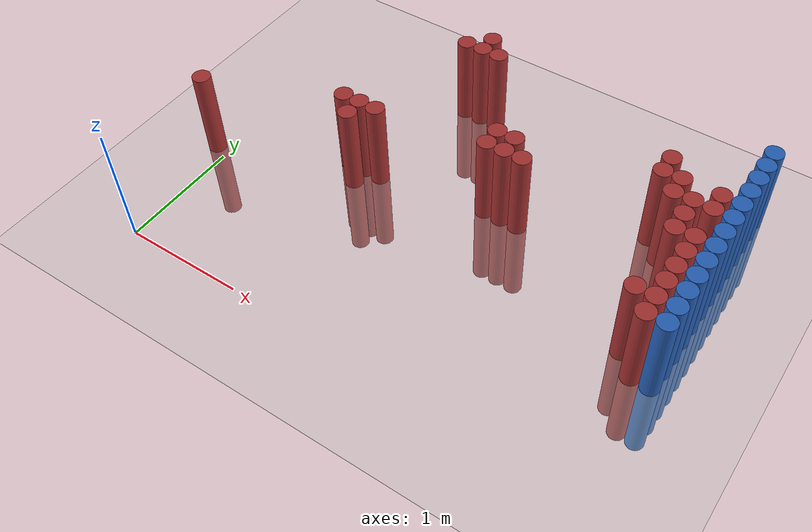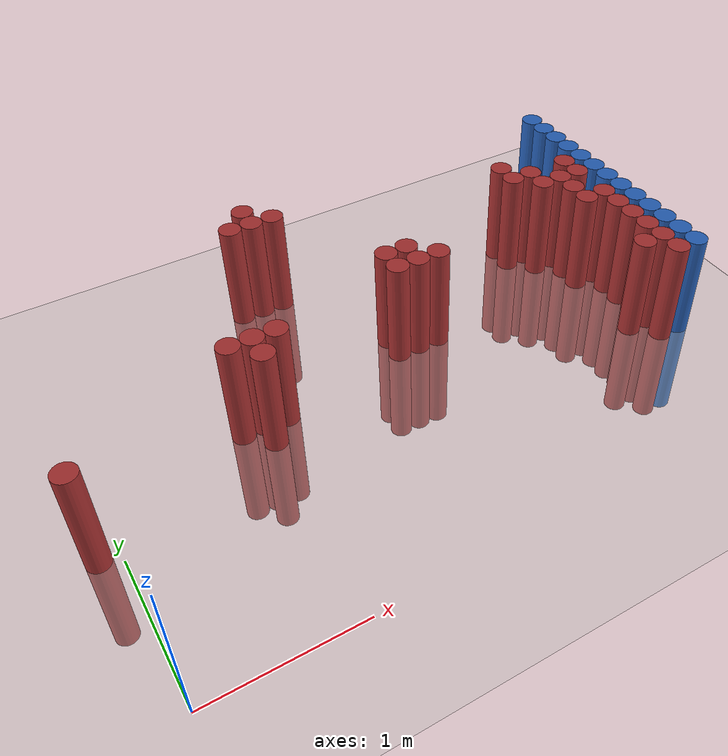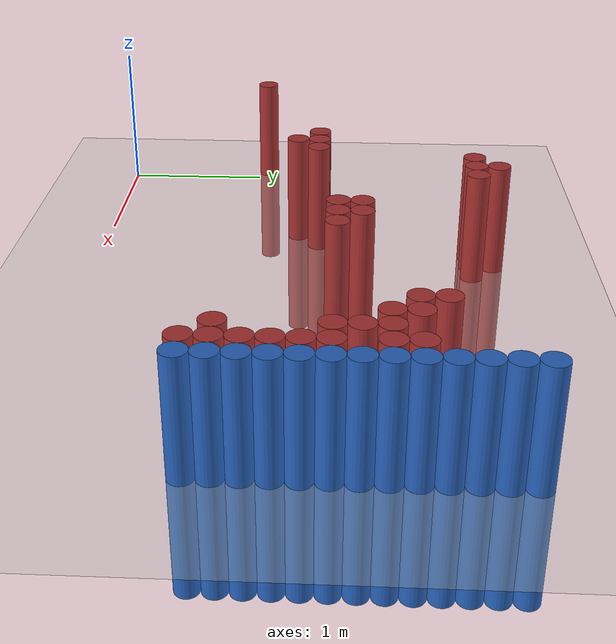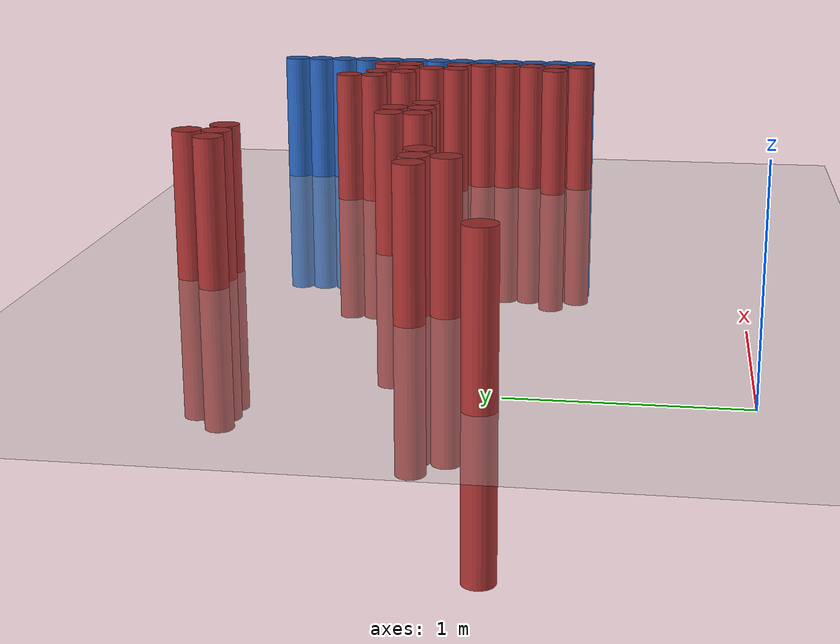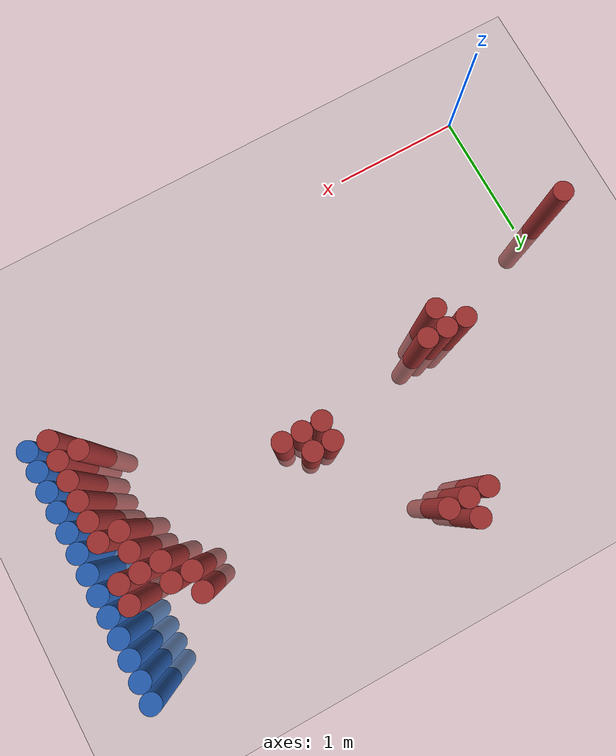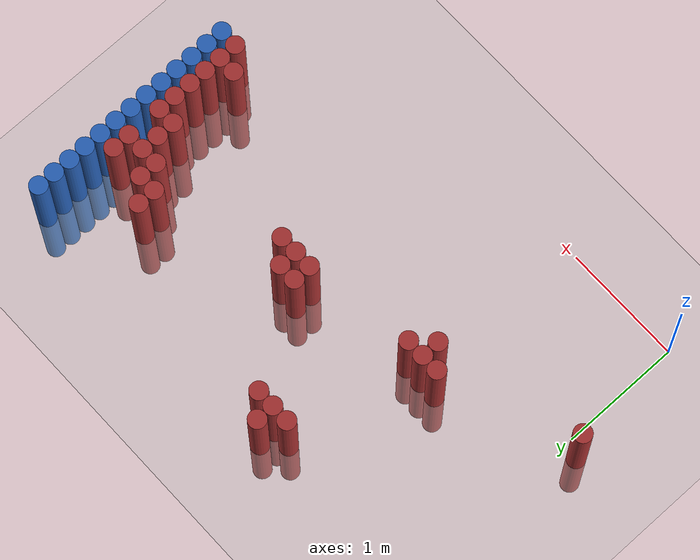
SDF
<sdf version="1.6">
 <world name="default">
  <model name="ground_plane">
   <static>1</static>
   <link name="link">
    <collision name="collision">
     <geometry><plane><normal>0 0 1</normal><size>100 100</size></plane></geometry>
     <surface><friction><ode><mu>100</mu><mu2>50</mu2></ode></friction></surface>
    </collision>
    <visual name="visual">
     <cast_shadows>0</cast_shadows>
     <geometry><plane><normal>0 0 1</normal><size>100 100</size></plane></geometry>
     <material>
      <script><uri>file://media/materials/scripts/gazebo.material</uri><name>Gazebo/Grey</name></script>
     </material>
    </visual>
   </link>
  </model>
  <model name="unit_cylinder_128">
   <static>1</static>
   <pose>3.925000 1.075000 0.000000 0.000000 0.000000 0.000000</pose>
   <link name="link">
    <inertial>
     <mass>1</mass>
     <inertia><ixx>0.145833</ixx><ixy>0</ixy><ixz>0</ixz><iyy>0.145833</iyy><iyz>0</iyz><izz>0.125</izz></inertia>
    </inertial>
    <collision name="collision">
     <geometry><cylinder><radius>0.075000</radius><length>1.5</length></cylinder></geometry>
    </collision>
    <visual name="visual">
     <geometry><cylinder><radius>0.075000</radius><length>1.5</length></cylinder></geometry>
     <material>
      <ambient>0.152000 0.379000 0.720000 1</ambient>
      <diffuse>0.152000 0.379000 0.720000 1</diffuse>
     </material>
     <material>
      <script><name>Gazebo/Grey</name><uri>file://media/materials/scripts/gazebo.material</uri></script>
     </material>
    </visual>
   </link>
  </model>
  <model name="unit_cylinder_130">
   <static>1</static>
   <pose>3.925000 1.225000 0.000000 0.000000 0.000000 0.000000</pose>
   <link name="link">
    <inertial>
     <mass>1</mass>
     <inertia><ixx>0.145833</ixx><ixy>0</ixy><ixz>0</ixz><iyy>0.145833</iyy><iyz>0</iyz><izz>0.125</izz></inertia>
    </inertial>
    <collision name="collision">
     <geometry><cylinder><radius>0.075000</radius><length>1.5</length></cylinder></geometry>
    </collision>
    <visual name="visual">
     <geometry><cylinder><radius>0.075000</radius><length>1.5</length></cylinder></geometry>
     <material>
      <ambient>0.152000 0.379000 0.720000 1</ambient>
      <diffuse>0.152000 0.379000 0.720000 1</diffuse>
     </material>
     <material>
      <script><name>Gazebo/Grey</name><uri>file://media/materials/scripts/gazebo.material</uri></script>
     </material>
    </visual>
   </link>
  </model>
  <model name="unit_cylinder_132">
   <static>1</static>
   <pose>3.925000 1.375000 0.000000 0.000000 0.000000 0.000000</pose>
   <link name="link">
    <inertial>
     <mass>1</mass>
     <inertia><ixx>0.145833</ixx><ixy>0</ixy><ixz>0</ixz><iyy>0.145833</iyy><iyz>0</iyz><izz>0.125</izz></inertia>
    </inertial>
    <collision name="collision">
     <geometry><cylinder><radius>0.075000</radius><length>1.5</length></cylinder></geometry>
    </collision>
    <visual name="visual">
     <geometry><cylinder><radius>0.075000</radius><length>1.5</length></cylinder></geometry>
     <material>
      <ambient>0.152000 0.379000 0.720000 1</ambient>
      <diffuse>0.152000 0.379000 0.720000 1</diffuse>
     </material>
     <material>
      <script><name>Gazebo/Grey</name><uri>file://media/materials/scripts/gazebo.material</uri></script>
     </material>
    </visual>
   </link>
  </model>
  <model name="unit_cylinder_134">
   <static>1</static>
   <pose>3.925000 1.525000 0.000000 0.000000 0.000000 0.000000</pose>
   <link name="link">
    <inertial>
     <mass>1</mass>
     <inertia><ixx>0.145833</ixx><ixy>0</ixy><ixz>0</ixz><iyy>0.145833</iyy><iyz>0</iyz><izz>0.125</izz></inertia>
    </inertial>
    <collision name="collision">
     <geometry><cylinder><radius>0.075000</radius><length>1.5</length></cylinder></geometry>
    </collision>
    <visual name="visual">
     <geometry><cylinder><radius>0.075000</radius><length>1.5</length></cylinder></geometry>
     <material>
      <ambient>0.152000 0.379000 0.720000 1</ambient>
      <diffuse>0.152000 0.379000 0.720000 1</diffuse>
     </material>
     <material>
      <script><name>Gazebo/Grey</name><uri>file://media/materials/scripts/gazebo.material</uri></script>
     </material>
    </visual>
   </link>
  </model>
  <model name="unit_cylinder_136">
   <static>1</static>
   <pose>3.925000 1.675000 0.000000 0.000000 0.000000 0.000000</pose>
   <link name="link">
    <inertial>
     <mass>1</mass>
     <inertia><ixx>0.145833</ixx><ixy>0</ixy><ixz>0</ixz><iyy>0.145833</iyy><iyz>0</iyz><izz>0.125</izz></inertia>
    </inertial>
    <collision name="collision">
     <geometry><cylinder><radius>0.075000</radius><length>1.5</length></cylinder></geometry>
    </collision>
    <visual name="visual">
     <geometry><cylinder><radius>0.075000</radius><length>1.5</length></cylinder></geometry>
     <material>
      <ambient>0.152000 0.379000 0.720000 1</ambient>
      <diffuse>0.152000 0.379000 0.720000 1</diffuse>
     </material>
     <material>
      <script><name>Gazebo/Grey</name><uri>file://media/materials/scripts/gazebo.material</uri></script>
     </material>
    </visual>
   </link>
  </model>
  <model name="unit_cylinder_138">
   <static>1</static>
   <pose>3.925000 1.825000 0.000000 0.000000 0.000000 0.000000</pose>
   <link name="link">
    <inertial>
     <mass>1</mass>
     <inertia><ixx>0.145833</ixx><ixy>0</ixy><ixz>0</ixz><iyy>0.145833</iyy><iyz>0</iyz><izz>0.125</izz></inertia>
    </inertial>
    <collision name="collision">
     <geometry><cylinder><radius>0.075000</radius><length>1.5</length></cylinder></geometry>
    </collision>
    <visual name="visual">
     <geometry><cylinder><radius>0.075000</radius><length>1.5</length></cylinder></geometry>
     <material>
      <ambient>0.152000 0.379000 0.720000 1</ambient>
      <diffuse>0.152000 0.379000 0.720000 1</diffuse>
     </material>
     <material>
      <script><name>Gazebo/Grey</name><uri>file://media/materials/scripts/gazebo.material</uri></script>
     </material>
    </visual>
   </link>
  </model>
  <model name="unit_cylinder_140">
   <static>1</static>
   <pose>3.925000 1.975000 0.000000 0.000000 0.000000 0.000000</pose>
   <link name="link">
    <inertial>
     <mass>1</mass>
     <inertia><ixx>0.145833</ixx><ixy>0</ixy><ixz>0</ixz><iyy>0.145833</iyy><iyz>0</iyz><izz>0.125</izz></inertia>
    </inertial>
    <collision name="collision">
     <geometry><cylinder><radius>0.075000</radius><length>1.5</length></cylinder></geometry>
    </collision>
    <visual name="visual">
     <geometry><cylinder><radius>0.075000</radius><length>1.5</length></cylinder></geometry>
     <material>
      <ambient>0.152000 0.379000 0.720000 1</ambient>
      <diffuse>0.152000 0.379000 0.720000 1</diffuse>
     </material>
     <material>
      <script><name>Gazebo/Grey</name><uri>file://media/materials/scripts/gazebo.material</uri></script>
     </material>
    </visual>
   </link>
  </model>
  <model name="unit_cylinder_142">
   <static>1</static>
   <pose>3.925000 2.125000 0.000000 0.000000 0.000000 0.000000</pose>
   <link name="link">
    <inertial>
     <mass>1</mass>
     <inertia><ixx>0.145833</ixx><ixy>0</ixy><ixz>0</ixz><iyy>0.145833</iyy><iyz>0</iyz><izz>0.125</izz></inertia>
    </inertial>
    <collision name="collision">
     <geometry><cylinder><radius>0.075000</radius><length>1.5</length></cylinder></geometry>
    </collision>
    <visual name="visual">
     <geometry><cylinder><radius>0.075000</radius><length>1.5</length></cylinder></geometry>
     <material>
      <ambient>0.152000 0.379000 0.720000 1</ambient>
      <diffuse>0.152000 0.379000 0.720000 1</diffuse>
     </material>
     <material>
      <script><name>Gazebo/Grey</name><uri>file://media/materials/scripts/gazebo.material</uri></script>
     </material>
    </visual>
   </link>
  </model>
  <model name="unit_cylinder_144">
   <static>1</static>
   <pose>3.925000 2.275000 0.000000 0.000000 0.000000 0.000000</pose>
   <link name="link">
    <inertial>
     <mass>1</mass>
     <inertia><ixx>0.145833</ixx><ixy>0</ixy><ixz>0</ixz><iyy>0.145833</iyy><iyz>0</iyz><izz>0.125</izz></inertia>
    </inertial>
    <collision name="collision">
     <geometry><cylinder><radius>0.075000</radius><length>1.5</length></cylinder></geometry>
    </collision>
    <visual name="visual">
     <geometry><cylinder><radius>0.075000</radius><length>1.5</length></cylinder></geometry>
     <material>
      <ambient>0.152000 0.379000 0.720000 1</ambient>
      <diffuse>0.152000 0.379000 0.720000 1</diffuse>
     </material>
     <material>
      <script><name>Gazebo/Grey</name><uri>file://media/materials/scripts/gazebo.material</uri></script>
     </material>
    </visual>
   </link>
  </model>
  <model name="unit_cylinder_146">
   <static>1</static>
   <pose>3.925000 2.425000 0.000000 0.000000 0.000000 0.000000</pose>
   <link name="link">
    <inertial>
     <mass>1</mass>
     <inertia><ixx>0.145833</ixx><ixy>0</ixy><ixz>0</ixz><iyy>0.145833</iyy><iyz>0</iyz><izz>0.125</izz></inertia>
    </inertial>
    <collision name="collision">
     <geometry><cylinder><radius>0.075000</radius><length>1.5</length></cylinder></geometry>
    </collision>
    <visual name="visual">
     <geometry><cylinder><radius>0.075000</radius><length>1.5</length></cylinder></geometry>
     <material>
      <ambient>0.152000 0.379000 0.720000 1</ambient>
      <diffuse>0.152000 0.379000 0.720000 1</diffuse>
     </material>
     <material>
      <script><name>Gazebo/Grey</name><uri>file://media/materials/scripts/gazebo.material</uri></script>
     </material>
    </visual>
   </link>
  </model>
  <model name="unit_cylinder_148">
   <static>1</static>
   <pose>3.925000 2.575000 0.000000 0.000000 0.000000 0.000000</pose>
   <link name="link">
    <inertial>
     <mass>1</mass>
     <inertia><ixx>0.145833</ixx><ixy>0</ixy><ixz>0</ixz><iyy>0.145833</iyy><iyz>0</iyz><izz>0.125</izz></inertia>
    </inertial>
    <collision name="collision">
     <geometry><cylinder><radius>0.075000</radius><length>1.5</length></cylinder></geometry>
    </collision>
    <visual name="visual">
     <geometry><cylinder><radius>0.075000</radius><length>1.5</length></cylinder></geometry>
     <material>
      <ambient>0.152000 0.379000 0.720000 1</ambient>
      <diffuse>0.152000 0.379000 0.720000 1</diffuse>
     </material>
     <material>
      <script><name>Gazebo/Grey</name><uri>file://media/materials/scripts/gazebo.material</uri></script>
     </material>
    </visual>
   </link>
  </model>
  <model name="unit_cylinder_150">
   <static>1</static>
   <pose>3.925000 2.725000 0.000000 0.000000 0.000000 0.000000</pose>
   <link name="link">
    <inertial>
     <mass>1</mass>
     <inertia><ixx>0.145833</ixx><ixy>0</ixy><ixz>0</ixz><iyy>0.145833</iyy><iyz>0</iyz><izz>0.125</izz></inertia>
    </inertial>
    <collision name="collision">
     <geometry><cylinder><radius>0.075000</radius><length>1.5</length></cylinder></geometry>
    </collision>
    <visual name="visual">
     <geometry><cylinder><radius>0.075000</radius><length>1.5</length></cylinder></geometry>
     <material>
      <ambient>0.152000 0.379000 0.720000 1</ambient>
      <diffuse>0.152000 0.379000 0.720000 1</diffuse>
     </material>
     <material>
      <script><name>Gazebo/Grey</name><uri>file://media/materials/scripts/gazebo.material</uri></script>
     </material>
    </visual>
   </link>
  </model>
  <model name="unit_cylinder_359">
   <static>1</static>
   <pose>-0.125000 1.075000 0.000000 0.000000 0.000000 0.000000</pose>
   <link name="link">
    <inertial>
     <mass>1</mass>
     <inertia><ixx>0.145833</ixx><ixy>0</ixy><ixz>0</ixz><iyy>0.145833</iyy><iyz>0</iyz><izz>0.125</izz></inertia>
    </inertial>
    <collision name="collision">
     <geometry><cylinder><radius>0.075000</radius><length>1.5</length></cylinder></geometry>
    </collision>
    <visual name="visual">
     <geometry><cylinder><radius>0.075000</radius><length>1.5</length></cylinder></geometry>
     <material>
      <ambient>0.648000 0.192000 0.192000 1</ambient>
      <diffuse>0.648000 0.192000 0.192000 1</diffuse>
     </material>
     <material>
      <script><name>Gazebo/Grey</name><uri>file://media/materials/scripts/gazebo.material</uri></script>
     </material>
    </visual>
   </link>
  </model>
  <model name="unit_cylinder_399">
   <static>1</static>
   <pose>0.925000 1.525000 0.000000 0.000000 0.000000 0.000000</pose>
   <link name="link">
    <inertial>
     <mass>1</mass>
     <inertia><ixx>0.145833</ixx><ixy>0</ixy><ixz>0</ixz><iyy>0.145833</iyy><iyz>0</iyz><izz>0.125</izz></inertia>
    </inertial>
    <collision name="collision">
     <geometry><cylinder><radius>0.075000</radius><length>1.5</length></cylinder></geometry>
    </collision>
    <visual name="visual">
     <geometry><cylinder><radius>0.075000</radius><length>1.5</length></cylinder></geometry>
     <material>
      <ambient>0.648000 0.192000 0.192000 1</ambient>
      <diffuse>0.648000 0.192000 0.192000 1</diffuse>
     </material>
     <material>
      <script><name>Gazebo/Grey</name><uri>file://media/materials/scripts/gazebo.material</uri></script>
     </material>
    </visual>
   </link>
  </model>
  <model name="unit_cylinder_406">
   <static>1</static>
   <pose>1.075000 1.375000 0.000000 0.000000 0.000000 0.000000</pose>
   <link name="link">
    <inertial>
     <mass>1</mass>
     <inertia><ixx>0.145833</ixx><ixy>0</ixy><ixz>0</ixz><iyy>0.145833</iyy><iyz>0</iyz><izz>0.125</izz></inertia>
    </inertial>
    <collision name="collision">
     <geometry><cylinder><radius>0.075000</radius><length>1.5</length></cylinder></geometry>
    </collision>
    <visual name="visual">
     <geometry><cylinder><radius>0.075000</radius><length>1.5</length></cylinder></geometry>
     <material>
      <ambient>0.648000 0.192000 0.192000 1</ambient>
      <diffuse>0.648000 0.192000 0.192000 1</diffuse>
     </material>
     <material>
      <script><name>Gazebo/Grey</name><uri>file://media/materials/scripts/gazebo.material</uri></script>
     </material>
    </visual>
   </link>
  </model>
  <model name="unit_cylinder_407">
   <static>1</static>
   <pose>1.075000 1.525000 0.000000 0.000000 0.000000 0.000000</pose>
   <link name="link">
    <inertial>
     <mass>1</mass>
     <inertia><ixx>0.145833</ixx><ixy>0</ixy><ixz>0</ixz><iyy>0.145833</iyy><iyz>0</iyz><izz>0.125</izz></inertia>
    </inertial>
    <collision name="collision">
     <geometry><cylinder><radius>0.075000</radius><length>1.5</length></cylinder></geometry>
    </collision>
    <visual name="visual">
     <geometry><cylinder><radius>0.075000</radius><length>1.5</length></cylinder></geometry>
     <material>
      <ambient>0.648000 0.192000 0.192000 1</ambient>
      <diffuse>0.648000 0.192000 0.192000 1</diffuse>
     </material>
     <material>
      <script><name>Gazebo/Grey</name><uri>file://media/materials/scripts/gazebo.material</uri></script>
     </material>
    </visual>
   </link>
  </model>
  <model name="unit_cylinder_412">
   <static>1</static>
   <pose>1.225000 1.525000 0.000000 0.000000 0.000000 0.000000</pose>
   <link name="link">
    <inertial>
     <mass>1</mass>
     <inertia><ixx>0.145833</ixx><ixy>0</ixy><ixz>0</ixz><iyy>0.145833</iyy><iyz>0</iyz><izz>0.125</izz></inertia>
    </inertial>
    <collision name="collision">
     <geometry><cylinder><radius>0.075000</radius><length>1.5</length></cylinder></geometry>
    </collision>
    <visual name="visual">
     <geometry><cylinder><radius>0.075000</radius><length>1.5</length></cylinder></geometry>
     <material>
      <ambient>0.648000 0.192000 0.192000 1</ambient>
      <diffuse>0.648000 0.192000 0.192000 1</diffuse>
     </material>
     <material>
      <script><name>Gazebo/Grey</name><uri>file://media/materials/scripts/gazebo.material</uri></script>
     </material>
    </visual>
   </link>
  </model>
  <model name="unit_cylinder_415">
   <static>1</static>
   <pose>1.375000 2.575000 0.000000 0.000000 0.000000 0.000000</pose>
   <link name="link">
    <inertial>
     <mass>1</mass>
     <inertia><ixx>0.145833</ixx><ixy>0</ixy><ixz>0</ixz><iyy>0.145833</iyy><iyz>0</iyz><izz>0.125</izz></inertia>
    </inertial>
    <collision name="collision">
     <geometry><cylinder><radius>0.075000</radius><length>1.5</length></cylinder></geometry>
    </collision>
    <visual name="visual">
     <geometry><cylinder><radius>0.075000</radius><length>1.5</length></cylinder></geometry>
     <material>
      <ambient>0.648000 0.192000 0.192000 1</ambient>
      <diffuse>0.648000 0.192000 0.192000 1</diffuse>
     </material>
     <material>
      <script><name>Gazebo/Grey</name><uri>file://media/materials/scripts/gazebo.material</uri></script>
     </material>
    </visual>
   </link>
  </model>
  <model name="unit_cylinder_420">
   <static>1</static>
   <pose>1.525000 2.575000 0.000000 0.000000 0.000000 0.000000</pose>
   <link name="link">
    <inertial>
     <mass>1</mass>
     <inertia><ixx>0.145833</ixx><ixy>0</ixy><ixz>0</ixz><iyy>0.145833</iyy><iyz>0</iyz><izz>0.125</izz></inertia>
    </inertial>
    <collision name="collision">
     <geometry><cylinder><radius>0.075000</radius><length>1.5</length></cylinder></geometry>
    </collision>
    <visual name="visual">
     <geometry><cylinder><radius>0.075000</radius><length>1.5</length></cylinder></geometry>
     <material>
      <ambient>0.648000 0.192000 0.192000 1</ambient>
      <diffuse>0.648000 0.192000 0.192000 1</diffuse>
     </material>
     <material>
      <script><name>Gazebo/Grey</name><uri>file://media/materials/scripts/gazebo.material</uri></script>
     </material>
    </visual>
   </link>
  </model>
  <model name="unit_cylinder_421">
   <static>1</static>
   <pose>1.525000 2.725000 0.000000 0.000000 0.000000 0.000000</pose>
   <link name="link">
    <inertial>
     <mass>1</mass>
     <inertia><ixx>0.145833</ixx><ixy>0</ixy><ixz>0</ixz><iyy>0.145833</iyy><iyz>0</iyz><izz>0.125</izz></inertia>
    </inertial>
    <collision name="collision">
     <geometry><cylinder><radius>0.075000</radius><length>1.5</length></cylinder></geometry>
    </collision>
    <visual name="visual">
     <geometry><cylinder><radius>0.075000</radius><length>1.5</length></cylinder></geometry>
     <material>
      <ambient>0.648000 0.192000 0.192000 1</ambient>
      <diffuse>0.648000 0.192000 0.192000 1</diffuse>
     </material>
     <material>
      <script><name>Gazebo/Grey</name><uri>file://media/materials/scripts/gazebo.material</uri></script>
     </material>
    </visual>
   </link>
  </model>
  <model name="unit_cylinder_424">
   <static>1</static>
   <pose>1.675000 2.575000 0.000000 0.000000 0.000000 0.000000</pose>
   <link name="link">
    <inertial>
     <mass>1</mass>
     <inertia><ixx>0.145833</ixx><ixy>0</ixy><ixz>0</ixz><iyy>0.145833</iyy><iyz>0</iyz><izz>0.125</izz></inertia>
    </inertial>
    <collision name="collision">
     <geometry><cylinder><radius>0.075000</radius><length>1.5</length></cylinder></geometry>
    </collision>
    <visual name="visual">
     <geometry><cylinder><radius>0.075000</radius><length>1.5</length></cylinder></geometry>
     <material>
      <ambient>0.648000 0.192000 0.192000 1</ambient>
      <diffuse>0.648000 0.192000 0.192000 1</diffuse>
     </material>
     <material>
      <script><name>Gazebo/Grey</name><uri>file://media/materials/scripts/gazebo.material</uri></script>
     </material>
    </visual>
   </link>
  </model>
  <model name="unit_cylinder_430">
   <static>1</static>
   <pose>2.125000 1.675000 0.000000 0.000000 0.000000 0.000000</pose>
   <link name="link">
    <inertial>
     <mass>1</mass>
     <inertia><ixx>0.145833</ixx><ixy>0</ixy><ixz>0</ixz><iyy>0.145833</iyy><iyz>0</iyz><izz>0.125</izz></inertia>
    </inertial>
    <collision name="collision">
     <geometry><cylinder><radius>0.075000</radius><length>1.5</length></cylinder></geometry>
    </collision>
    <visual name="visual">
     <geometry><cylinder><radius>0.075000</radius><length>1.5</length></cylinder></geometry>
     <material>
      <ambient>0.648000 0.192000 0.192000 1</ambient>
      <diffuse>0.648000 0.192000 0.192000 1</diffuse>
     </material>
     <material>
      <script><name>Gazebo/Grey</name><uri>file://media/materials/scripts/gazebo.material</uri></script>
     </material>
    </visual>
   </link>
  </model>
  <model name="unit_cylinder_431">
   <static>1</static>
   <pose>2.125000 1.825000 0.000000 0.000000 0.000000 0.000000</pose>
   <link name="link">
    <inertial>
     <mass>1</mass>
     <inertia><ixx>0.145833</ixx><ixy>0</ixy><ixz>0</ixz><iyy>0.145833</iyy><iyz>0</iyz><izz>0.125</izz></inertia>
    </inertial>
    <collision name="collision">
     <geometry><cylinder><radius>0.075000</radius><length>1.5</length></cylinder></geometry>
    </collision>
    <visual name="visual">
     <geometry><cylinder><radius>0.075000</radius><length>1.5</length></cylinder></geometry>
     <material>
      <ambient>0.648000 0.192000 0.192000 1</ambient>
      <diffuse>0.648000 0.192000 0.192000 1</diffuse>
     </material>
     <material>
      <script><name>Gazebo/Grey</name><uri>file://media/materials/scripts/gazebo.material</uri></script>
     </material>
    </visual>
   </link>
  </model>
  <model name="unit_cylinder_434">
   <static>1</static>
   <pose>2.275000 1.675000 0.000000 0.000000 0.000000 0.000000</pose>
   <link name="link">
    <inertial>
     <mass>1</mass>
     <inertia><ixx>0.145833</ixx><ixy>0</ixy><ixz>0</ixz><iyy>0.145833</iyy><iyz>0</iyz><izz>0.125</izz></inertia>
    </inertial>
    <collision name="collision">
     <geometry><cylinder><radius>0.075000</radius><length>1.5</length></cylinder></geometry>
    </collision>
    <visual name="visual">
     <geometry><cylinder><radius>0.075000</radius><length>1.5</length></cylinder></geometry>
     <material>
      <ambient>0.648000 0.192000 0.192000 1</ambient>
      <diffuse>0.648000 0.192000 0.192000 1</diffuse>
     </material>
     <material>
      <script><name>Gazebo/Grey</name><uri>file://media/materials/scripts/gazebo.material</uri></script>
     </material>
    </visual>
   </link>
  </model>
  <model name="unit_cylinder_435">
   <static>1</static>
   <pose>2.275000 1.825000 0.000000 0.000000 0.000000 0.000000</pose>
   <link name="link">
    <inertial>
     <mass>1</mass>
     <inertia><ixx>0.145833</ixx><ixy>0</ixy><ixz>0</ixz><iyy>0.145833</iyy><iyz>0</iyz><izz>0.125</izz></inertia>
    </inertial>
    <collision name="collision">
     <geometry><cylinder><radius>0.075000</radius><length>1.5</length></cylinder></geometry>
    </collision>
    <visual name="visual">
     <geometry><cylinder><radius>0.075000</radius><length>1.5</length></cylinder></geometry>
     <material>
      <ambient>0.648000 0.192000 0.192000 1</ambient>
      <diffuse>0.648000 0.192000 0.192000 1</diffuse>
     </material>
     <material>
      <script><name>Gazebo/Grey</name><uri>file://media/materials/scripts/gazebo.material</uri></script>
     </material>
    </visual>
   </link>
  </model>
  <model name="unit_cylinder_437">
   <static>1</static>
   <pose>2.425000 1.675000 0.000000 0.000000 0.000000 0.000000</pose>
   <link name="link">
    <inertial>
     <mass>1</mass>
     <inertia><ixx>0.145833</ixx><ixy>0</ixy><ixz>0</ixz><iyy>0.145833</iyy><iyz>0</iyz><izz>0.125</izz></inertia>
    </inertial>
    <collision name="collision">
     <geometry><cylinder><radius>0.075000</radius><length>1.5</length></cylinder></geometry>
    </collision>
    <visual name="visual">
     <geometry><cylinder><radius>0.075000</radius><length>1.5</length></cylinder></geometry>
     <material>
      <ambient>0.648000 0.192000 0.192000 1</ambient>
      <diffuse>0.648000 0.192000 0.192000 1</diffuse>
     </material>
     <material>
      <script><name>Gazebo/Grey</name><uri>file://media/materials/scripts/gazebo.material</uri></script>
     </material>
    </visual>
   </link>
  </model>
  <model name="unit_cylinder_450">
   <static>1</static>
   <pose>3.325000 2.125000 0.000000 0.000000 0.000000 0.000000</pose>
   <link name="link">
    <inertial>
     <mass>1</mass>
     <inertia><ixx>0.145833</ixx><ixy>0</ixy><ixz>0</ixz><iyy>0.145833</iyy><iyz>0</iyz><izz>0.125</izz></inertia>
    </inertial>
    <collision name="collision">
     <geometry><cylinder><radius>0.075000</radius><length>1.5</length></cylinder></geometry>
    </collision>
    <visual name="visual">
     <geometry><cylinder><radius>0.075000</radius><length>1.5</length></cylinder></geometry>
     <material>
      <ambient>0.648000 0.192000 0.192000 1</ambient>
      <diffuse>0.648000 0.192000 0.192000 1</diffuse>
     </material>
     <material>
      <script><name>Gazebo/Grey</name><uri>file://media/materials/scripts/gazebo.material</uri></script>
     </material>
    </visual>
   </link>
  </model>
  <model name="unit_cylinder_451">
   <static>1</static>
   <pose>3.325000 2.275000 0.000000 0.000000 0.000000 0.000000</pose>
   <link name="link">
    <inertial>
     <mass>1</mass>
     <inertia><ixx>0.145833</ixx><ixy>0</ixy><ixz>0</ixz><iyy>0.145833</iyy><iyz>0</iyz><izz>0.125</izz></inertia>
    </inertial>
    <collision name="collision">
     <geometry><cylinder><radius>0.075000</radius><length>1.5</length></cylinder></geometry>
    </collision>
    <visual name="visual">
     <geometry><cylinder><radius>0.075000</radius><length>1.5</length></cylinder></geometry>
     <material>
      <ambient>0.648000 0.192000 0.192000 1</ambient>
      <diffuse>0.648000 0.192000 0.192000 1</diffuse>
     </material>
     <material>
      <script><name>Gazebo/Grey</name><uri>file://media/materials/scripts/gazebo.material</uri></script>
     </material>
    </visual>
   </link>
  </model>
  <model name="unit_cylinder_453">
   <static>1</static>
   <pose>3.475000 1.975000 0.000000 0.000000 0.000000 0.000000</pose>
   <link name="link">
    <inertial>
     <mass>1</mass>
     <inertia><ixx>0.145833</ixx><ixy>0</ixy><ixz>0</ixz><iyy>0.145833</iyy><iyz>0</iyz><izz>0.125</izz></inertia>
    </inertial>
    <collision name="collision">
     <geometry><cylinder><radius>0.075000</radius><length>1.5</length></cylinder></geometry>
    </collision>
    <visual name="visual">
     <geometry><cylinder><radius>0.075000</radius><length>1.5</length></cylinder></geometry>
     <material>
      <ambient>0.648000 0.192000 0.192000 1</ambient>
      <diffuse>0.648000 0.192000 0.192000 1</diffuse>
     </material>
     <material>
      <script><name>Gazebo/Grey</name><uri>file://media/materials/scripts/gazebo.material</uri></script>
     </material>
    </visual>
   </link>
  </model>
  <model name="unit_cylinder_454">
   <static>1</static>
   <pose>3.475000 2.125000 0.000000 0.000000 0.000000 0.000000</pose>
   <link name="link">
    <inertial>
     <mass>1</mass>
     <inertia><ixx>0.145833</ixx><ixy>0</ixy><ixz>0</ixz><iyy>0.145833</iyy><iyz>0</iyz><izz>0.125</izz></inertia>
    </inertial>
    <collision name="collision">
     <geometry><cylinder><radius>0.075000</radius><length>1.5</length></cylinder></geometry>
    </collision>
    <visual name="visual">
     <geometry><cylinder><radius>0.075000</radius><length>1.5</length></cylinder></geometry>
     <material>
      <ambient>0.648000 0.192000 0.192000 1</ambient>
      <diffuse>0.648000 0.192000 0.192000 1</diffuse>
     </material>
     <material>
      <script><name>Gazebo/Grey</name><uri>file://media/materials/scripts/gazebo.material</uri></script>
     </material>
    </visual>
   </link>
  </model>
  <model name="unit_cylinder_458">
   <static>1</static>
   <pose>3.625000 1.075000 0.000000 0.000000 0.000000 0.000000</pose>
   <link name="link">
    <inertial>
     <mass>1</mass>
     <inertia><ixx>0.145833</ixx><ixy>0</ixy><ixz>0</ixz><iyy>0.145833</iyy><iyz>0</iyz><izz>0.125</izz></inertia>
    </inertial>
    <collision name="collision">
     <geometry><cylinder><radius>0.075000</radius><length>1.5</length></cylinder></geometry>
    </collision>
    <visual name="visual">
     <geometry><cylinder><radius>0.075000</radius><length>1.5</length></cylinder></geometry>
     <material>
      <ambient>0.648000 0.192000 0.192000 1</ambient>
      <diffuse>0.648000 0.192000 0.192000 1</diffuse>
     </material>
     <material>
      <script><name>Gazebo/Grey</name><uri>file://media/materials/scripts/gazebo.material</uri></script>
     </material>
    </visual>
   </link>
  </model>
  <model name="unit_cylinder_459">
   <static>1</static>
   <pose>3.625000 1.675000 0.000000 0.000000 0.000000 0.000000</pose>
   <link name="link">
    <inertial>
     <mass>1</mass>
     <inertia><ixx>0.145833</ixx><ixy>0</ixy><ixz>0</ixz><iyy>0.145833</iyy><iyz>0</iyz><izz>0.125</izz></inertia>
    </inertial>
    <collision name="collision">
     <geometry><cylinder><radius>0.075000</radius><length>1.5</length></cylinder></geometry>
    </collision>
    <visual name="visual">
     <geometry><cylinder><radius>0.075000</radius><length>1.5</length></cylinder></geometry>
     <material>
      <ambient>0.648000 0.192000 0.192000 1</ambient>
      <diffuse>0.648000 0.192000 0.192000 1</diffuse>
     </material>
     <material>
      <script><name>Gazebo/Grey</name><uri>file://media/materials/scripts/gazebo.material</uri></script>
     </material>
    </visual>
   </link>
  </model>
  <model name="unit_cylinder_460">
   <static>1</static>
   <pose>3.625000 1.825000 0.000000 0.000000 0.000000 0.000000</pose>
   <link name="link">
    <inertial>
     <mass>1</mass>
     <inertia><ixx>0.145833</ixx><ixy>0</ixy><ixz>0</ixz><iyy>0.145833</iyy><iyz>0</iyz><izz>0.125</izz></inertia>
    </inertial>
    <collision name="collision">
     <geometry><cylinder><radius>0.075000</radius><length>1.5</length></cylinder></geometry>
    </collision>
    <visual name="visual">
     <geometry><cylinder><radius>0.075000</radius><length>1.5</length></cylinder></geometry>
     <material>
      <ambient>0.648000 0.192000 0.192000 1</ambient>
      <diffuse>0.648000 0.192000 0.192000 1</diffuse>
     </material>
     <material>
      <script><name>Gazebo/Grey</name><uri>file://media/materials/scripts/gazebo.material</uri></script>
     </material>
    </visual>
   </link>
  </model>
  <model name="unit_cylinder_461">
   <static>1</static>
   <pose>3.625000 1.975000 0.000000 0.000000 0.000000 0.000000</pose>
   <link name="link">
    <inertial>
     <mass>1</mass>
     <inertia><ixx>0.145833</ixx><ixy>0</ixy><ixz>0</ixz><iyy>0.145833</iyy><iyz>0</iyz><izz>0.125</izz></inertia>
    </inertial>
    <collision name="collision">
     <geometry><cylinder><radius>0.075000</radius><length>1.5</length></cylinder></geometry>
    </collision>
    <visual name="visual">
     <geometry><cylinder><radius>0.075000</radius><length>1.5</length></cylinder></geometry>
     <material>
      <ambient>0.648000 0.192000 0.192000 1</ambient>
      <diffuse>0.648000 0.192000 0.192000 1</diffuse>
     </material>
     <material>
      <script><name>Gazebo/Grey</name><uri>file://media/materials/scripts/gazebo.material</uri></script>
     </material>
    </visual>
   </link>
  </model>
  <model name="unit_cylinder_473">
   <static>1</static>
   <pose>3.775000 0.925000 0.000000 0.000000 0.000000 0.000000</pose>
   <link name="link">
    <inertial>
     <mass>1</mass>
     <inertia><ixx>0.145833</ixx><ixy>0</ixy><ixz>0</ixz><iyy>0.145833</iyy><iyz>0</iyz><izz>0.125</izz></inertia>
    </inertial>
    <collision name="collision">
     <geometry><cylinder><radius>0.075000</radius><length>1.5</length></cylinder></geometry>
    </collision>
    <visual name="visual">
     <geometry><cylinder><radius>0.075000</radius><length>1.5</length></cylinder></geometry>
     <material>
      <ambient>0.648000 0.192000 0.192000 1</ambient>
      <diffuse>0.648000 0.192000 0.192000 1</diffuse>
     </material>
     <material>
      <script><name>Gazebo/Grey</name><uri>file://media/materials/scripts/gazebo.material</uri></script>
     </material>
    </visual>
   </link>
  </model>
  <model name="unit_cylinder_474">
   <static>1</static>
   <pose>3.775000 1.075000 0.000000 0.000000 0.000000 0.000000</pose>
   <link name="link">
    <inertial>
     <mass>1</mass>
     <inertia><ixx>0.145833</ixx><ixy>0</ixy><ixz>0</ixz><iyy>0.145833</iyy><iyz>0</iyz><izz>0.125</izz></inertia>
    </inertial>
    <collision name="collision">
     <geometry><cylinder><radius>0.075000</radius><length>1.5</length></cylinder></geometry>
    </collision>
    <visual name="visual">
     <geometry><cylinder><radius>0.075000</radius><length>1.5</length></cylinder></geometry>
     <material>
      <ambient>0.648000 0.192000 0.192000 1</ambient>
      <diffuse>0.648000 0.192000 0.192000 1</diffuse>
     </material>
     <material>
      <script><name>Gazebo/Grey</name><uri>file://media/materials/scripts/gazebo.material</uri></script>
     </material>
    </visual>
   </link>
  </model>
  <model name="unit_cylinder_475">
   <static>1</static>
   <pose>3.775000 1.225000 0.000000 0.000000 0.000000 0.000000</pose>
   <link name="link">
    <inertial>
     <mass>1</mass>
     <inertia><ixx>0.145833</ixx><ixy>0</ixy><ixz>0</ixz><iyy>0.145833</iyy><iyz>0</iyz><izz>0.125</izz></inertia>
    </inertial>
    <collision name="collision">
     <geometry><cylinder><radius>0.075000</radius><length>1.5</length></cylinder></geometry>
    </collision>
    <visual name="visual">
     <geometry><cylinder><radius>0.075000</radius><length>1.5</length></cylinder></geometry>
     <material>
      <ambient>0.648000 0.192000 0.192000 1</ambient>
      <diffuse>0.648000 0.192000 0.192000 1</diffuse>
     </material>
     <material>
      <script><name>Gazebo/Grey</name><uri>file://media/materials/scripts/gazebo.material</uri></script>
     </material>
    </visual>
   </link>
  </model>
  <model name="unit_cylinder_476">
   <static>1</static>
   <pose>3.775000 1.375000 0.000000 0.000000 0.000000 0.000000</pose>
   <link name="link">
    <inertial>
     <mass>1</mass>
     <inertia><ixx>0.145833</ixx><ixy>0</ixy><ixz>0</ixz><iyy>0.145833</iyy><iyz>0</iyz><izz>0.125</izz></inertia>
    </inertial>
    <collision name="collision">
     <geometry><cylinder><radius>0.075000</radius><length>1.5</length></cylinder></geometry>
    </collision>
    <visual name="visual">
     <geometry><cylinder><radius>0.075000</radius><length>1.5</length></cylinder></geometry>
     <material>
      <ambient>0.648000 0.192000 0.192000 1</ambient>
      <diffuse>0.648000 0.192000 0.192000 1</diffuse>
     </material>
     <material>
      <script><name>Gazebo/Grey</name><uri>file://media/materials/scripts/gazebo.material</uri></script>
     </material>
    </visual>
   </link>
  </model>
  <model name="unit_cylinder_477">
   <static>1</static>
   <pose>3.775000 1.525000 0.000000 0.000000 0.000000 0.000000</pose>
   <link name="link">
    <inertial>
     <mass>1</mass>
     <inertia><ixx>0.145833</ixx><ixy>0</ixy><ixz>0</ixz><iyy>0.145833</iyy><iyz>0</iyz><izz>0.125</izz></inertia>
    </inertial>
    <collision name="collision">
     <geometry><cylinder><radius>0.075000</radius><length>1.5</length></cylinder></geometry>
    </collision>
    <visual name="visual">
     <geometry><cylinder><radius>0.075000</radius><length>1.5</length></cylinder></geometry>
     <material>
      <ambient>0.648000 0.192000 0.192000 1</ambient>
      <diffuse>0.648000 0.192000 0.192000 1</diffuse>
     </material>
     <material>
      <script><name>Gazebo/Grey</name><uri>file://media/materials/scripts/gazebo.material</uri></script>
     </material>
    </visual>
   </link>
  </model>
  <model name="unit_cylinder_478">
   <static>1</static>
   <pose>3.775000 1.675000 0.000000 0.000000 0.000000 0.000000</pose>
   <link name="link">
    <inertial>
     <mass>1</mass>
     <inertia><ixx>0.145833</ixx><ixy>0</ixy><ixz>0</ixz><iyy>0.145833</iyy><iyz>0</iyz><izz>0.125</izz></inertia>
    </inertial>
    <collision name="collision">
     <geometry><cylinder><radius>0.075000</radius><length>1.5</length></cylinder></geometry>
    </collision>
    <visual name="visual">
     <geometry><cylinder><radius>0.075000</radius><length>1.5</length></cylinder></geometry>
     <material>
      <ambient>0.648000 0.192000 0.192000 1</ambient>
      <diffuse>0.648000 0.192000 0.192000 1</diffuse>
     </material>
     <material>
      <script><name>Gazebo/Grey</name><uri>file://media/materials/scripts/gazebo.material</uri></script>
     </material>
    </visual>
   </link>
  </model>
  <model name="unit_cylinder_479">
   <static>1</static>
   <pose>3.775000 1.975000 0.000000 0.000000 0.000000 0.000000</pose>
   <link name="link">
    <inertial>
     <mass>1</mass>
     <inertia><ixx>0.145833</ixx><ixy>0</ixy><ixz>0</ixz><iyy>0.145833</iyy><iyz>0</iyz><izz>0.125</izz></inertia>
    </inertial>
    <collision name="collision">
     <geometry><cylinder><radius>0.075000</radius><length>1.5</length></cylinder></geometry>
    </collision>
    <visual name="visual">
     <geometry><cylinder><radius>0.075000</radius><length>1.5</length></cylinder></geometry>
     <material>
      <ambient>0.648000 0.192000 0.192000 1</ambient>
      <diffuse>0.648000 0.192000 0.192000 1</diffuse>
     </material>
     <material>
      <script><name>Gazebo/Grey</name><uri>file://media/materials/scripts/gazebo.material</uri></script>
     </material>
    </visual>
   </link>
  </model>
  <model name="unit_cylinder_480">
   <static>1</static>
   <pose>3.775000 2.125000 0.000000 0.000000 0.000000 0.000000</pose>
   <link name="link">
    <inertial>
     <mass>1</mass>
     <inertia><ixx>0.145833</ixx><ixy>0</ixy><ixz>0</ixz><iyy>0.145833</iyy><iyz>0</iyz><izz>0.125</izz></inertia>
    </inertial>
    <collision name="collision">
     <geometry><cylinder><radius>0.075000</radius><length>1.5</length></cylinder></geometry>
    </collision>
    <visual name="visual">
     <geometry><cylinder><radius>0.075000</radius><length>1.5</length></cylinder></geometry>
     <material>
      <ambient>0.648000 0.192000 0.192000 1</ambient>
      <diffuse>0.648000 0.192000 0.192000 1</diffuse>
     </material>
     <material>
      <script><name>Gazebo/Grey</name><uri>file://media/materials/scripts/gazebo.material</uri></script>
     </material>
    </visual>
   </link>
  </model>
  <model name="unit_cylinder_509">
   <static>1</static>
   <pose>3.925000 0.925000 0.000000 0.000000 0.000000 0.000000</pose>
   <link name="link">
    <inertial>
     <mass>1</mass>
     <inertia><ixx>0.145833</ixx><ixy>0</ixy><ixz>0</ixz><iyy>0.145833</iyy><iyz>0</iyz><izz>0.125</izz></inertia>
    </inertial>
    <collision name="collision">
     <geometry><cylinder><radius>0.075000</radius><length>1.5</length></cylinder></geometry>
    </collision>
    <visual name="visual">
     <geometry><cylinder><radius>0.075000</radius><length>1.5</length></cylinder></geometry>
     <material>
      <ambient>0.152000 0.379000 0.720000 1</ambient>
      <diffuse>0.152000 0.379000 0.720000 1</diffuse>
     </material>
     <material>
      <script><name>Gazebo/Grey</name><uri>file://media/materials/scripts/gazebo.material</uri></script>
     </material>
    </visual>
   </link>
  </model>
  <model name="unit_cylinder_510">
   <static>1</static>
   <pose>3.925000 1.075000 0.000000 0.000000 0.000000 0.000000</pose>
   <link name="link">
    <inertial>
     <mass>1</mass>
     <inertia><ixx>0.145833</ixx><ixy>0</ixy><ixz>0</ixz><iyy>0.145833</iyy><iyz>0</iyz><izz>0.125</izz></inertia>
    </inertial>
    <collision name="collision">
     <geometry><cylinder><radius>0.075000</radius><length>1.5</length></cylinder></geometry>
    </collision>
    <visual name="visual">
     <geometry><cylinder><radius>0.075000</radius><length>1.5</length></cylinder></geometry>
     <material>
      <ambient>0.152000 0.379000 0.720000 1</ambient>
      <diffuse>0.152000 0.379000 0.720000 1</diffuse>
     </material>
     <material>
      <script><name>Gazebo/Grey</name><uri>file://media/materials/scripts/gazebo.material</uri></script>
     </material>
    </visual>
   </link>
  </model>
  <model name="unit_cylinder_511">
   <static>1</static>
   <pose>3.925000 1.225000 0.000000 0.000000 0.000000 0.000000</pose>
   <link name="link">
    <inertial>
     <mass>1</mass>
     <inertia><ixx>0.145833</ixx><ixy>0</ixy><ixz>0</ixz><iyy>0.145833</iyy><iyz>0</iyz><izz>0.125</izz></inertia>
    </inertial>
    <collision name="collision">
     <geometry><cylinder><radius>0.075000</radius><length>1.5</length></cylinder></geometry>
    </collision>
    <visual name="visual">
     <geometry><cylinder><radius>0.075000</radius><length>1.5</length></cylinder></geometry>
     <material>
      <ambient>0.152000 0.379000 0.720000 1</ambient>
      <diffuse>0.152000 0.379000 0.720000 1</diffuse>
     </material>
     <material>
      <script><name>Gazebo/Grey</name><uri>file://media/materials/scripts/gazebo.material</uri></script>
     </material>
    </visual>
   </link>
  </model>
  <model name="unit_cylinder_512">
   <static>1</static>
   <pose>3.925000 1.375000 0.000000 0.000000 0.000000 0.000000</pose>
   <link name="link">
    <inertial>
     <mass>1</mass>
     <inertia><ixx>0.145833</ixx><ixy>0</ixy><ixz>0</ixz><iyy>0.145833</iyy><iyz>0</iyz><izz>0.125</izz></inertia>
    </inertial>
    <collision name="collision">
     <geometry><cylinder><radius>0.075000</radius><length>1.5</length></cylinder></geometry>
    </collision>
    <visual name="visual">
     <geometry><cylinder><radius>0.075000</radius><length>1.5</length></cylinder></geometry>
     <material>
      <ambient>0.152000 0.379000 0.720000 1</ambient>
      <diffuse>0.152000 0.379000 0.720000 1</diffuse>
     </material>
     <material>
      <script><name>Gazebo/Grey</name><uri>file://media/materials/scripts/gazebo.material</uri></script>
     </material>
    </visual>
   </link>
  </model>
  <model name="unit_cylinder_513">
   <static>1</static>
   <pose>3.925000 1.525000 0.000000 0.000000 0.000000 0.000000</pose>
   <link name="link">
    <inertial>
     <mass>1</mass>
     <inertia><ixx>0.145833</ixx><ixy>0</ixy><ixz>0</ixz><iyy>0.145833</iyy><iyz>0</iyz><izz>0.125</izz></inertia>
    </inertial>
    <collision name="collision">
     <geometry><cylinder><radius>0.075000</radius><length>1.5</length></cylinder></geometry>
    </collision>
    <visual name="visual">
     <geometry><cylinder><radius>0.075000</radius><length>1.5</length></cylinder></geometry>
     <material>
      <ambient>0.152000 0.379000 0.720000 1</ambient>
      <diffuse>0.152000 0.379000 0.720000 1</diffuse>
     </material>
     <material>
      <script><name>Gazebo/Grey</name><uri>file://media/materials/scripts/gazebo.material</uri></script>
     </material>
    </visual>
   </link>
  </model>
  <model name="unit_cylinder_514">
   <static>1</static>
   <pose>3.925000 1.675000 0.000000 0.000000 0.000000 0.000000</pose>
   <link name="link">
    <inertial>
     <mass>1</mass>
     <inertia><ixx>0.145833</ixx><ixy>0</ixy><ixz>0</ixz><iyy>0.145833</iyy><iyz>0</iyz><izz>0.125</izz></inertia>
    </inertial>
    <collision name="collision">
     <geometry><cylinder><radius>0.075000</radius><length>1.5</length></cylinder></geometry>
    </collision>
    <visual name="visual">
     <geometry><cylinder><radius>0.075000</radius><length>1.5</length></cylinder></geometry>
     <material>
      <ambient>0.152000 0.379000 0.720000 1</ambient>
      <diffuse>0.152000 0.379000 0.720000 1</diffuse>
     </material>
     <material>
      <script><name>Gazebo/Grey</name><uri>file://media/materials/scripts/gazebo.material</uri></script>
     </material>
    </visual>
   </link>
  </model>
  <model name="unit_cylinder_515">
   <static>1</static>
   <pose>3.925000 1.825000 0.000000 0.000000 0.000000 0.000000</pose>
   <link name="link">
    <inertial>
     <mass>1</mass>
     <inertia><ixx>0.145833</ixx><ixy>0</ixy><ixz>0</ixz><iyy>0.145833</iyy><iyz>0</iyz><izz>0.125</izz></inertia>
    </inertial>
    <collision name="collision">
     <geometry><cylinder><radius>0.075000</radius><length>1.5</length></cylinder></geometry>
    </collision>
    <visual name="visual">
     <geometry><cylinder><radius>0.075000</radius><length>1.5</length></cylinder></geometry>
     <material>
      <ambient>0.152000 0.379000 0.720000 1</ambient>
      <diffuse>0.152000 0.379000 0.720000 1</diffuse>
     </material>
     <material>
      <script><name>Gazebo/Grey</name><uri>file://media/materials/scripts/gazebo.material</uri></script>
     </material>
    </visual>
   </link>
  </model>
  <model name="unit_cylinder_516">
   <static>1</static>
   <pose>3.925000 1.975000 0.000000 0.000000 0.000000 0.000000</pose>
   <link name="link">
    <inertial>
     <mass>1</mass>
     <inertia><ixx>0.145833</ixx><ixy>0</ixy><ixz>0</ixz><iyy>0.145833</iyy><iyz>0</iyz><izz>0.125</izz></inertia>
    </inertial>
    <collision name="collision">
     <geometry><cylinder><radius>0.075000</radius><length>1.5</length></cylinder></geometry>
    </collision>
    <visual name="visual">
     <geometry><cylinder><radius>0.075000</radius><length>1.5</length></cylinder></geometry>
     <material>
      <ambient>0.152000 0.379000 0.720000 1</ambient>
      <diffuse>0.152000 0.379000 0.720000 1</diffuse>
     </material>
     <material>
      <script><name>Gazebo/Grey</name><uri>file://media/materials/scripts/gazebo.material</uri></script>
     </material>
    </visual>
   </link>
  </model>
  <model name="unit_cylinder_517">
   <static>1</static>
   <pose>3.925000 2.125000 0.000000 0.000000 0.000000 0.000000</pose>
   <link name="link">
    <inertial>
     <mass>1</mass>
     <inertia><ixx>0.145833</ixx><ixy>0</ixy><ixz>0</ixz><iyy>0.145833</iyy><iyz>0</iyz><izz>0.125</izz></inertia>
    </inertial>
    <collision name="collision">
     <geometry><cylinder><radius>0.075000</radius><length>1.5</length></cylinder></geometry>
    </collision>
    <visual name="visual">
     <geometry><cylinder><radius>0.075000</radius><length>1.5</length></cylinder></geometry>
     <material>
      <ambient>0.152000 0.379000 0.720000 1</ambient>
      <diffuse>0.152000 0.379000 0.720000 1</diffuse>
     </material>
     <material>
      <script><name>Gazebo/Grey</name><uri>file://media/materials/scripts/gazebo.material</uri></script>
     </material>
    </visual>
   </link>
  </model>
  <model name="unit_cylinder_518">
   <static>1</static>
   <pose>3.925000 2.275000 0.000000 0.000000 0.000000 0.000000</pose>
   <link name="link">
    <inertial>
     <mass>1</mass>
     <inertia><ixx>0.145833</ixx><ixy>0</ixy><ixz>0</ixz><iyy>0.145833</iyy><iyz>0</iyz><izz>0.125</izz></inertia>
    </inertial>
    <collision name="collision">
     <geometry><cylinder><radius>0.075000</radius><length>1.5</length></cylinder></geometry>
    </collision>
    <visual name="visual">
     <geometry><cylinder><radius>0.075000</radius><length>1.5</length></cylinder></geometry>
     <material>
      <ambient>0.152000 0.379000 0.720000 1</ambient>
      <diffuse>0.152000 0.379000 0.720000 1</diffuse>
     </material>
     <material>
      <script><name>Gazebo/Grey</name><uri>file://media/materials/scripts/gazebo.material</uri></script>
     </material>
    </visual>
   </link>
  </model>
  <model name="unit_cylinder_519">
   <static>1</static>
   <pose>3.925000 2.425000 0.000000 0.000000 0.000000 0.000000</pose>
   <link name="link">
    <inertial>
     <mass>1</mass>
     <inertia><ixx>0.145833</ixx><ixy>0</ixy><ixz>0</ixz><iyy>0.145833</iyy><iyz>0</iyz><izz>0.125</izz></inertia>
    </inertial>
    <collision name="collision">
     <geometry><cylinder><radius>0.075000</radius><length>1.5</length></cylinder></geometry>
    </collision>
    <visual name="visual">
     <geometry><cylinder><radius>0.075000</radius><length>1.5</length></cylinder></geometry>
     <material>
      <ambient>0.152000 0.379000 0.720000 1</ambient>
      <diffuse>0.152000 0.379000 0.720000 1</diffuse>
     </material>
     <material>
      <script><name>Gazebo/Grey</name><uri>file://media/materials/scripts/gazebo.material</uri></script>
     </material>
    </visual>
   </link>
  </model>
  <model name="unit_cylinder_520">
   <static>1</static>
   <pose>3.925000 2.575000 0.000000 0.000000 0.000000 0.000000</pose>
   <link name="link">
    <inertial>
     <mass>1</mass>
     <inertia><ixx>0.145833</ixx><ixy>0</ixy><ixz>0</ixz><iyy>0.145833</iyy><iyz>0</iyz><izz>0.125</izz></inertia>
    </inertial>
    <collision name="collision">
     <geometry><cylinder><radius>0.075000</radius><length>1.5</length></cylinder></geometry>
    </collision>
    <visual name="visual">
     <geometry><cylinder><radius>0.075000</radius><length>1.5</length></cylinder></geometry>
     <material>
      <ambient>0.152000 0.379000 0.720000 1</ambient>
      <diffuse>0.152000 0.379000 0.720000 1</diffuse>
     </material>
     <material>
      <script><name>Gazebo/Grey</name><uri>file://media/materials/scripts/gazebo.material</uri></script>
     </material>
    </visual>
   </link>
  </model>
 </world>
</sdf>
